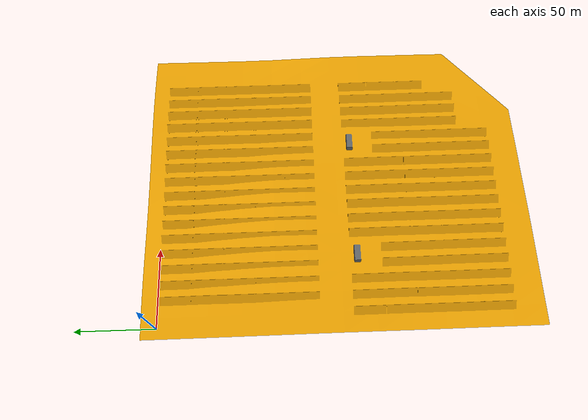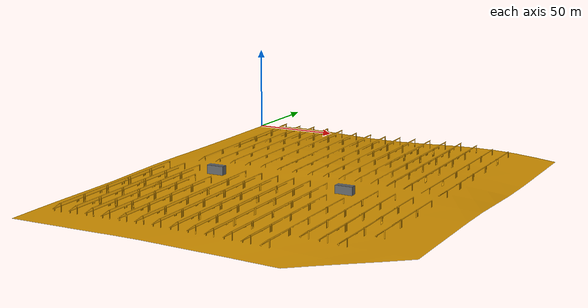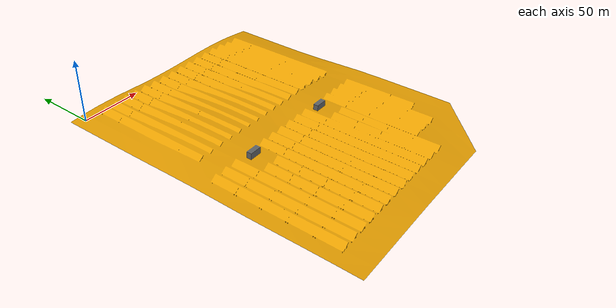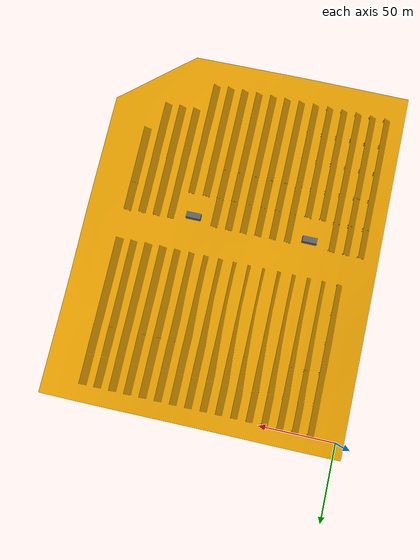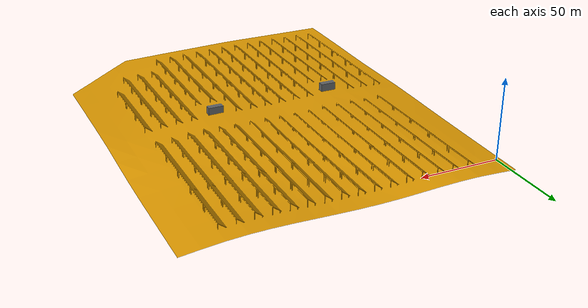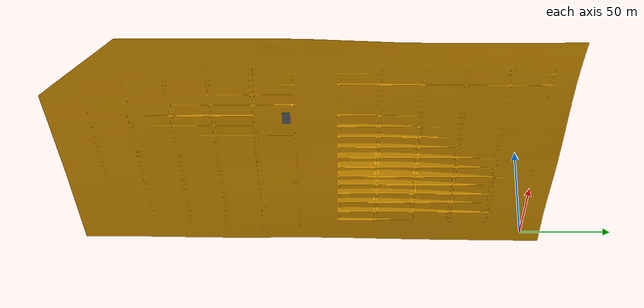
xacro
<?xml version="1.0"?>
<robot name="agriculture_world" xmlns:xacro="http://www.ros.org/wiki/xacro">
  <link name="agriculture_world_link">
    <inertial>
      <origin xyz="0 0 0" rpy="0 0 0"/>
      <mass value="1"/>
      <inertia ixx="1" ixy="0" ixz="0" iyy="1" iyz="0" izz="1"/>
    </inertial>
    <visual>
      <origin xyz="0 0 0" rpy="0 0 0"/>
      <geometry>
        <mesh filename="package://durable_gazebo_simulation/meshes/evora_farm.dae"/>
      </geometry>
    </visual>
    <collision>
      <origin xyz="0 0 0" rpy="0 0 0"/>
      <geometry>
        <mesh filename="package://durable_gazebo_simulation/meshes/evora_farm.dae"/>
      </geometry>
    </collision>
  </link>
  <gazebo> <static>true</static></gazebo>
</robot>
